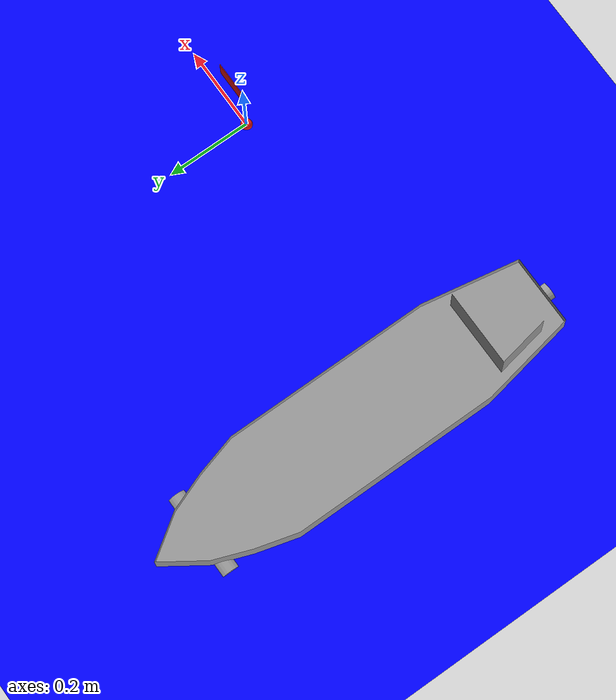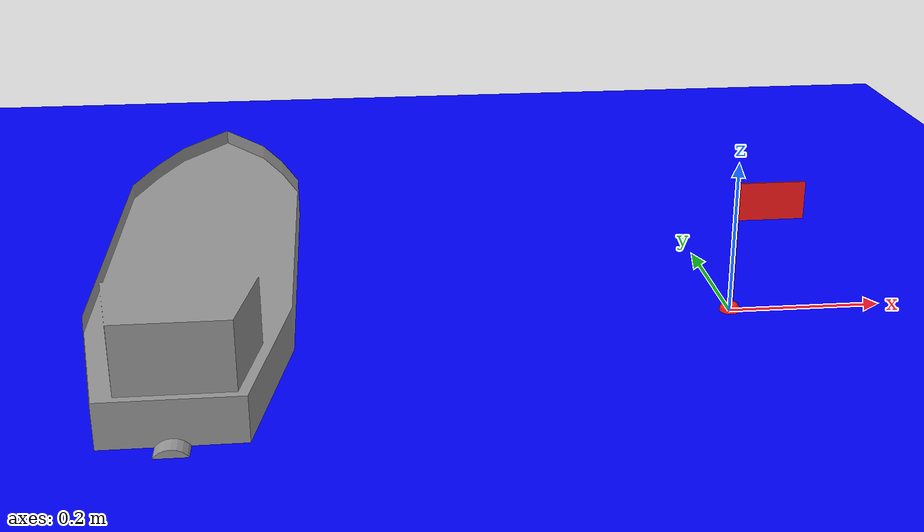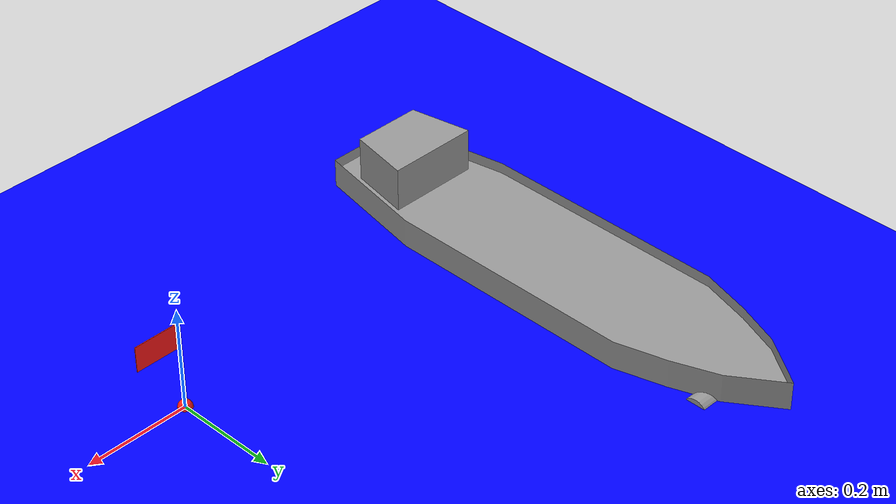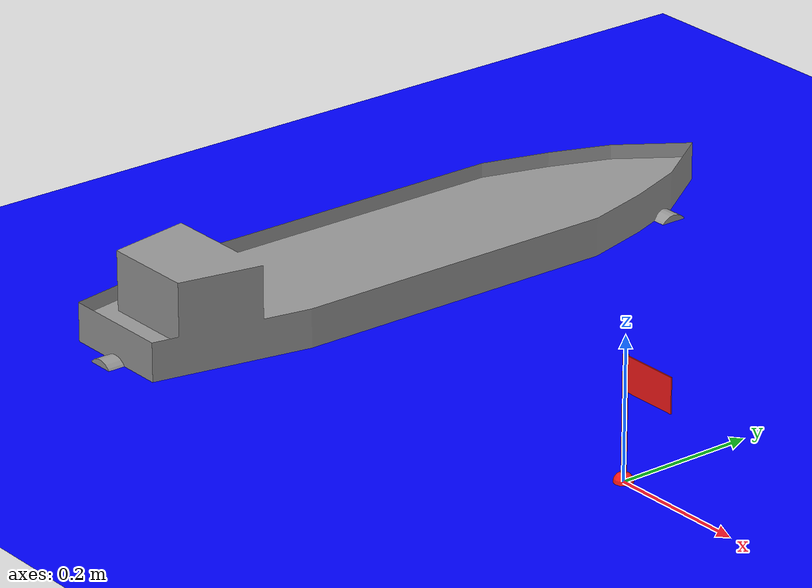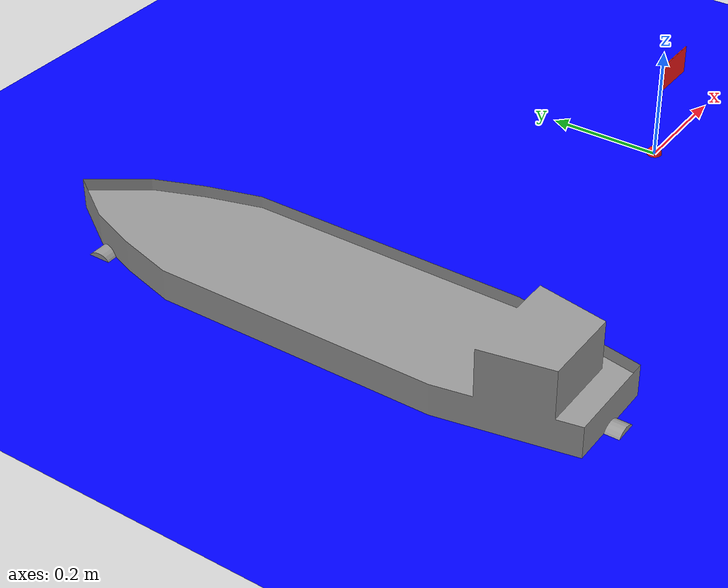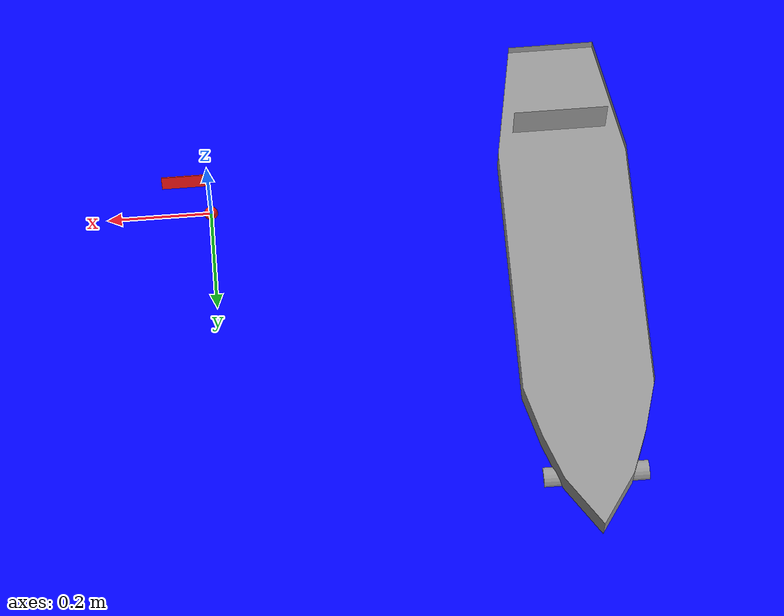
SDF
<?xml version="1.0"?>
<sdf version="1.4">
	<world name="default">

		<gui fullscreen='0'>
			<plugin name='keyboard' filename='libKeyboardGUIPlugin.so'/>
		</gui>

   		<!-- Ground Plane -->
	    <include>
			<uri>model://WaterPlane</uri>
		</include>

		<include>
			<uri>model://sun</uri>
		</include>

		<!-- Flag model  -->
		<include>
			<uri>model://Flag</uri>
		</include>

		<!-- Boat model -->
		<include>
			<uri>model://Boat</uri>
		</include>

	</world>
</sdf>

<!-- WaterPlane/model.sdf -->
<sdf version="1.4">
<model name="my_ground_plane">
  <static>true</static>
    <link name="link">
      <collision name="collision">
        <geometry>
          <plane>
            <normal>0 0 1</normal>
            <size>100 100</size>
          </plane>
        </geometry>
        <surface>
          <friction>
            <ode>
              <mu>0.1</mu>
              <mu2>0.1</mu2>
            </ode>
          </friction>
        </surface>
      </collision>
      <visual name="visual">
        <cast_shadows>false</cast_shadows>
        <geometry>
          <plane>
            <normal>0 0 1</normal>
            <size>100 100</size>
          </plane>
        </geometry>
        <material>
			<diffuse>0 0 1 1</diffuse>
        </material>
      </visual>
    </link>
  </model>
</sdf>

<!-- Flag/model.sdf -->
<sdf version='1.6'>
  <model name='Flag'>
    <link name='link_1'>
      <inertial>
        <mass>1</mass>
        <inertia>
          <ixx>0.166667</ixx>
          <ixy>0</ixy>
          <ixz>0</ixz>
          <iyy>0.166667</iyy>
          <iyz>0</iyz>
          <izz>0.166667</izz>
        </inertia>
        <pose frame=''>0 0 0 0 -0 0</pose>
      </inertial>
      <pose frame=''>0 0 0 0 -0 0</pose>
      <gravity>1</gravity>
      <self_collide>0</self_collide>
      <kinematic>0</kinematic>
      <enable_wind>0</enable_wind>
      <visual name='visual'>
        <pose frame=''>0 0 0 1.5707 -0 0</pose>
        <geometry>
          <mesh>
            <uri>/home/henri/gazebo/flag.obj</uri>
            <scale>0.1 0.1 0.1</scale>
          </mesh>
        </geometry>
        <material>
          <lighting>1</lighting>
          <script>
            <uri>file://media/materials/scripts/gazebo.material</uri>
            <name>Gazebo/Grey</name>
          </script>
          <shader type='pixel'>
            <normal_map>__default__</normal_map>
          </shader>
          <ambient>0.3 0.3 0.3 1</ambient>
          <diffuse>1 0.1 0.1 1</diffuse>
          <specular>0.01 0.01 0.01 1</specular>
          <emissive>0 0 0 1</emissive>
        </material>
        <transparency>0</transparency>
        <cast_shadows>1</cast_shadows>
      </visual>
      <collision name='collision'>
        <laser_retro>0</laser_retro>
        <max_contacts>10</max_contacts>
        <pose frame=''>0 0 0 1.5707 -0 0</pose>
        <geometry>
          <mesh>
            <uri>/home/henri/gazebo/flag.obj</uri>
            <scale>0.1 0.1 0.1</scale>
          </mesh>
        </geometry>
        <surface>
          <friction>
            <ode>
              <mu>1</mu>
              <mu2>1</mu2>
              <fdir1>0 0 0</fdir1>
              <slip1>0</slip1>
              <slip2>0</slip2>
            </ode>
            <torsional>
              <coefficient>1</coefficient>
              <patch_radius>0</patch_radius>
              <surface_radius>0</surface_radius>
              <use_patch_radius>1</use_patch_radius>
              <ode>
                <slip>0</slip>
              </ode>
            </torsional>
          </friction>
          <bounce>
            <restitution_coefficient>0</restitution_coefficient>
            <threshold>1e+06</threshold>
          </bounce>
          <contact>
            <collide_without_contact>0</collide_without_contact>
            <collide_without_contact_bitmask>1</collide_without_contact_bitmask>
            <collide_bitmask>1</collide_bitmask>
            <ode>
              <soft_cfm>0</soft_cfm>
              <soft_erp>0.2</soft_erp>
              <kp>1e+13</kp>
              <kd>1</kd>
              <max_vel>0.01</max_vel>
              <min_depth>0</min_depth>
            </ode>
            <bullet>
              <split_impulse>1</split_impulse>
              <split_impulse_penetration_threshold>-0.01</split_impulse_penetration_threshold>
              <soft_cfm>0</soft_cfm>
              <soft_erp>0.2</soft_erp>
              <kp>1e+13</kp>
              <kd>1</kd>
            </bullet>
          </contact>
        </surface>
      </collision>
    </link>
    <static>0</static>
    <allow_auto_disable>1</allow_auto_disable>
    <plugin name='flag_locator' filename='libflag_locator.so'/>
  </model>
</sdf>

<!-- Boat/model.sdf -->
<sdf version='1.6'>
  <model name='Boat'>
    <link name='link_0'>
      <inertial>
        <mass>8</mass>
        <inertia>
          <ixx>0.166667</ixx>
          <ixy>0</ixy>
          <ixz>0</ixz>
          <iyy>0.166667</iyy>
          <iyz>0</iyz>
          <izz>0.166667</izz>
        </inertia>
        <pose frame=''>0 0 0 0 -0 0</pose>
      </inertial>
      <pose frame=''>-0.689151 0.214204 -0.016449 0 -0 0</pose>
      <gravity>1</gravity>
      <self_collide>0</self_collide>
      <kinematic>0</kinematic>
      <enable_wind>0</enable_wind>
      <visual name='visual'>
        <pose frame=''>0 0 0 1.5707 -0 0</pose>
        <geometry>
          <mesh>
            <uri>/home/henri/gazebo/boat.obj</uri>
            <scale>1 1 1</scale>
          </mesh>
        </geometry>
        <material>
          <lighting>1</lighting>
          <script>
            <uri>file://media/materials/scripts/gazebo.material</uri>
            <name>Gazebo/Grey</name>
          </script>
          <shader type='pixel'>
            <normal_map>__default__</normal_map>
          </shader>
          <ambient>0.6 0.6 0.6 1</ambient>
          <diffuse>0.7 0.7 0.7 1</diffuse>
          <specular>0.01 0.01 0.01 1</specular>
          <emissive>0 0 0 1</emissive>
        </material>
        <transparency>0</transparency>
        <cast_shadows>1</cast_shadows>
      </visual>
      <collision name='collision'>
        <laser_retro>0</laser_retro>
        <max_contacts>10</max_contacts>
        <pose frame=''>0 0 0 1.5707 -0 0</pose>
        <geometry>
          <mesh>
            <uri>/home/henri/gazebo/boat.obj</uri>
            <scale>1 1 1</scale>
          </mesh>
        </geometry>
        <surface>
          <friction>
            <ode>
              <mu>1</mu>
              <mu2>1</mu2>
              <fdir1>0 0 0</fdir1>
              <slip1>0</slip1>
              <slip2>0</slip2>
            </ode>
            <torsional>
              <coefficient>1</coefficient>
              <patch_radius>0</patch_radius>
              <surface_radius>0</surface_radius>
              <use_patch_radius>1</use_patch_radius>
              <ode>
                <slip>0</slip>
              </ode>
            </torsional>
          </friction>
          <bounce>
            <restitution_coefficient>0</restitution_coefficient>
            <threshold>1e+06</threshold>
          </bounce>
          <contact>
            <collide_without_contact>0</collide_without_contact>
            <collide_without_contact_bitmask>1</collide_without_contact_bitmask>
            <collide_bitmask>1</collide_bitmask>
            <ode>
              <soft_cfm>0</soft_cfm>
              <soft_erp>0.2</soft_erp>
              <kp>1e+13</kp>
              <kd>1</kd>
              <max_vel>0.01</max_vel>
              <min_depth>0</min_depth>
            </ode>
            <bullet>
              <split_impulse>1</split_impulse>
              <split_impulse_penetration_threshold>-0.01</split_impulse_penetration_threshold>
              <soft_cfm>0</soft_cfm>
              <soft_erp>0.2</soft_erp>
              <kp>1e+13</kp>
              <kd>1</kd>
            </bullet>
          </contact>
        </surface>
      </collision>
    </link>
    <link name='link_1'>
      <inertial>
        <mass>0.5</mass>
        <inertia>
          <ixx>0.00174479</ixx>
          <ixy>0</ixy>
          <ixz>0</ixz>
          <iyy>0.00174479</iyy>
          <iyz>0</iyz>
          <izz>0.00015625</izz>
        </inertia>
        <pose frame=''>0 0 0 0 -0 0</pose>
      </inertial>
      <pose frame=''>-0.689151 0.594204 -0.016449 0 -0 0</pose>
      <gravity>1</gravity>
      <self_collide>0</self_collide>
      <kinematic>0</kinematic>
      <enable_wind>0</enable_wind>
      <visual name='visual'>
        <pose frame=''>0 0 0 0 1.5707 0</pose>
        <geometry>
          <cylinder>
            <radius>0.025</radius>
            <length>0.2</length>
          </cylinder>
        </geometry>
        <material>
          <lighting>1</lighting>
          <script>
            <uri>file://media/materials/scripts/gazebo.material</uri>
            <name>Gazebo/Grey</name>
          </script>
          <shader type='pixel'>
            <normal_map>__default__</normal_map>
          </shader>
          <ambient>0.3 0.3 0.3 1</ambient>
          <diffuse>0.7 0.7 0.7 1</diffuse>
          <specular>0.01 0.01 0.01 1</specular>
          <emissive>0 0 0 1</emissive>
        </material>
        <transparency>0</transparency>
        <cast_shadows>1</cast_shadows>
      </visual>
      <collision name='collision'>
        <laser_retro>0</laser_retro>
        <max_contacts>10</max_contacts>
        <pose frame=''>0 0 0 0 1.5707 0</pose>
        <geometry>
          <cylinder>
            <radius>0.025</radius>
            <length>0.2</length>
          </cylinder>
        </geometry>
        <surface>
          <friction>
            <ode>
              <mu>1</mu>
              <mu2>1</mu2>
              <fdir1>0 0 0</fdir1>
              <slip1>0</slip1>
              <slip2>0</slip2>
            </ode>
            <torsional>
              <coefficient>1</coefficient>
              <patch_radius>0</patch_radius>
              <surface_radius>0</surface_radius>
              <use_patch_radius>1</use_patch_radius>
              <ode>
                <slip>0</slip>
              </ode>
            </torsional>
          </friction>
          <bounce>
            <restitution_coefficient>0</restitution_coefficient>
            <threshold>1e+06</threshold>
          </bounce>
          <contact>
            <collide_without_contact>0</collide_without_contact>
            <collide_without_contact_bitmask>1</collide_without_contact_bitmask>
            <collide_bitmask>1</collide_bitmask>
            <ode>
              <soft_cfm>0</soft_cfm>
              <soft_erp>0.2</soft_erp>
              <kp>1e+13</kp>
              <kd>1</kd>
              <max_vel>0.01</max_vel>
              <min_depth>0</min_depth>
            </ode>
            <bullet>
              <split_impulse>1</split_impulse>
              <split_impulse_penetration_threshold>-0.01</split_impulse_penetration_threshold>
              <soft_cfm>0</soft_cfm>
              <soft_erp>0.2</soft_erp>
              <kp>1e+13</kp>
              <kd>1</kd>
            </bullet>
          </contact>
        </surface>
      </collision>
    </link>
    <link name='link_2'>
      <inertial>
        <mass>0.1</mass>
        <inertia>
          <ixx>3.646e-05</ixx>
          <ixy>0</ixy>
          <ixz>0</ixz>
          <iyy>3.646e-05</iyy>
          <iyz>0</iyz>
          <izz>3.125e-05</izz>
        </inertia>
        <pose frame=''>0 0 0 0 -0 0</pose>
      </inertial>
      <pose frame=''>-0.689151 -0.285796 -0.016449 0 -0 0</pose>
      <gravity>1</gravity>
      <self_collide>0</self_collide>
      <kinematic>0</kinematic>
      <enable_wind>0</enable_wind>
      <visual name='visual'>
        <pose frame=''>0 0 0 1.5707 -0 0</pose>
        <geometry>
          <cylinder>
            <radius>0.025</radius>
            <length>0.05</length>
          </cylinder>
        </geometry>
        <material>
          <lighting>1</lighting>
          <script>
            <uri>file://media/materials/scripts/gazebo.material</uri>
            <name>Gazebo/Grey</name>
          </script>
          <shader type='pixel'>
            <normal_map>__default__</normal_map>
          </shader>
          <ambient>0.3 0.3 0.3 1</ambient>
          <diffuse>0.7 0.7 0.7 1</diffuse>
          <specular>0.01 0.01 0.01 1</specular>
          <emissive>0 0 0 1</emissive>
        </material>
        <transparency>0</transparency>
        <cast_shadows>1</cast_shadows>
      </visual>
      <collision name='collision'>
        <laser_retro>0</laser_retro>
        <max_contacts>10</max_contacts>
        <pose frame=''>0 0 0 1.5707 -0 0</pose>
        <geometry>
          <cylinder>
            <radius>0.025</radius>
            <length>0.05</length>
          </cylinder>
        </geometry>
        <surface>
          <friction>
            <ode>
              <mu>1</mu>
              <mu2>1</mu2>
              <fdir1>0 0 0</fdir1>
              <slip1>0</slip1>
              <slip2>0</slip2>
            </ode>
            <torsional>
              <coefficient>1</coefficient>
              <patch_radius>0</patch_radius>
              <surface_radius>0</surface_radius>
              <use_patch_radius>1</use_patch_radius>
              <ode>
                <slip>0</slip>
              </ode>
            </torsional>
          </friction>
          <bounce>
            <restitution_coefficient>0</restitution_coefficient>
            <threshold>1e+06</threshold>
          </bounce>
          <contact>
            <collide_without_contact>0</collide_without_contact>
            <collide_without_contact_bitmask>1</collide_without_contact_bitmask>
            <collide_bitmask>1</collide_bitmask>
            <ode>
              <soft_cfm>0</soft_cfm>
              <soft_erp>0.2</soft_erp>
              <kp>1e+13</kp>
              <kd>1</kd>
              <max_vel>0.01</max_vel>
              <min_depth>0</min_depth>
            </ode>
            <bullet>
              <split_impulse>1</split_impulse>
              <split_impulse_penetration_threshold>-0.01</split_impulse_penetration_threshold>
              <soft_cfm>0</soft_cfm>
              <soft_erp>0.2</soft_erp>
              <kp>1e+13</kp>
              <kd>1</kd>
            </bullet>
          </contact>
        </surface>
      </collision>
    </link>
    <joint name='link_0_JOINT_0' type='fixed'>
      <parent>link_0</parent>
      <child>link_1</child>
      <pose frame=''>0 0 0 0 -0 0</pose>
      <physics>
        <ode>
          <limit>
            <cfm>0</cfm>
            <erp>0.2</erp>
          </limit>
          <suspension>
            <cfm>0</cfm>
            <erp>0.2</erp>
          </suspension>
        </ode>
      </physics>
    </joint>
    <joint name='link_0_JOINT_1' type='fixed'>
      <parent>link_0</parent>
      <child>link_2</child>
      <pose frame=''>0 0 0 0 -0 0</pose>
      <physics>
        <ode>
          <limit>
            <cfm>0</cfm>
            <erp>0.2</erp>
          </limit>
          <suspension>
            <cfm>0</cfm>
            <erp>0.2</erp>
          </suspension>
        </ode>
      </physics>
    </joint>
    <static>0</static>
    <allow_auto_disable>1</allow_auto_disable>
    <plugin name='model_wfqi' filename='libmodel_wfqi.so'/>
  </model>
</sdf>
